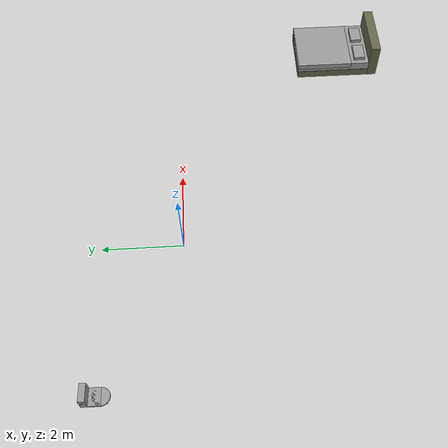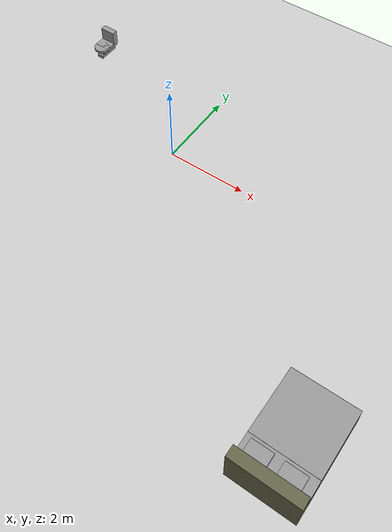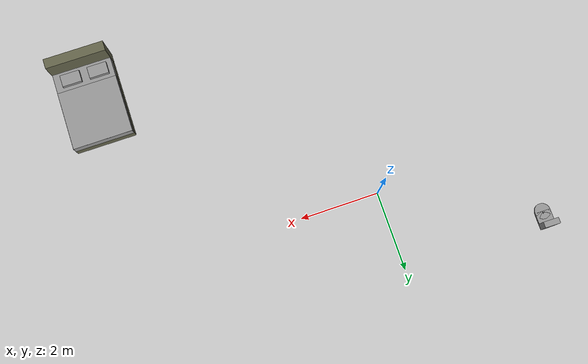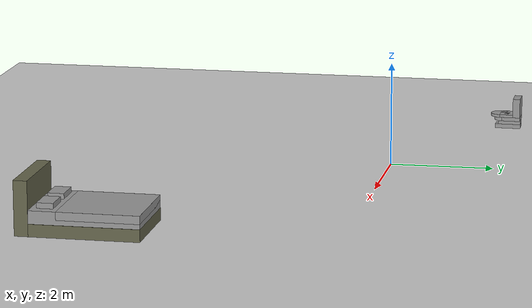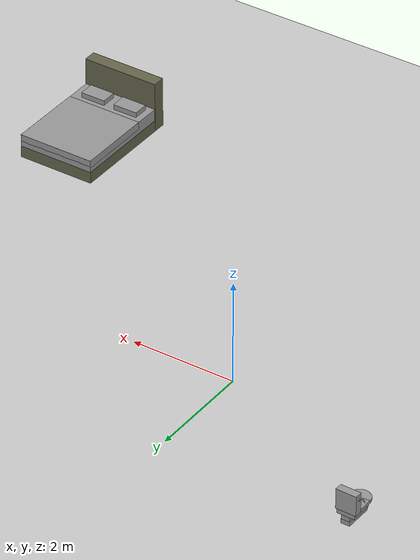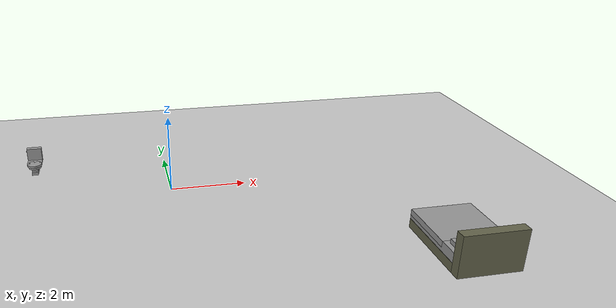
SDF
<sdf version="1.6">
 <world name="default">
  <model name="ground_plane">
   <static>1</static>
   <link name="link">
    <collision name="collision">
     <geometry><plane><normal>0 0 1</normal><size>100 100</size></plane></geometry>
     <surface><friction><ode><mu>100</mu><mu2>50</mu2></ode></friction></surface>
    </collision>
    <visual name="visual">
     <cast_shadows>0</cast_shadows>
     <geometry><plane><normal>0 0 1</normal><size>100 100</size></plane></geometry>
     <material>
      <script><uri>file://media/materials/scripts/gazebo.material</uri><name>Gazebo/Grey</name></script>
     </material>
    </visual>
   </link>
  </model>
  <model name="toilet_0">
   <link name="link_3">
    <pose>2.86172 0.097134 0.225194 0 -0 0</pose>
    <visual name="visual">
     <geometry><box><size>0.17 0.515 0.085</size></box></geometry>
     <material>
      <lighting>1</lighting>
      <script><uri>file://media/materials/scripts/gazebo.material</uri><name>Gazebo/Grey</name></script>
      <ambient>0.3 0.3 0.3 1</ambient>
      <diffuse>0.7 0.7 0.7 1</diffuse>
      <specular>0.01 1 1 1</specular>
      <emissive>0 0 0 1</emissive>
      <shader type="vertex"><normal_map>__default__</normal_map></shader>
     </material>
    </visual>
    <collision name="collision">
     <geometry><box><size>0.17 0.515 0.085</size></box></geometry>
     <surface>
      <friction>
       <ode><mu>1</mu><mu2>1</mu2><fdir1>0 0 0</fdir1><slip1>0</slip1><slip2>0</slip2></ode>
       <torsional>
        <coefficient>1</coefficient>
        <patch_radius>0</patch_radius>
        <surface_radius>0</surface_radius>
        <use_patch_radius>1</use_patch_radius>
        <ode><slip>0</slip></ode>
       </torsional>
      </friction>
      <bounce><restitution_coefficient>0</restitution_coefficient><threshold>1e+06</threshold></bounce>
      <contact>
       <collide_without_contact>0</collide_without_contact>
       <collide_without_contact_bitmask>1</collide_without_contact_bitmask>
       <collide_bitmask>1</collide_bitmask>
       <ode>
        <soft_cfm>0</soft_cfm>
        <soft_erp>0.2</soft_erp>
        <kp>1e+13</kp>
        <kd>1</kd>
        <max_vel>0.01</max_vel>
        <min_depth>0</min_depth>
       </ode>
       <bullet>
        <split_impulse>1</split_impulse>
        <split_impulse_penetration_threshold>-0.01</split_impulse_penetration_threshold>
        <soft_cfm>0</soft_cfm>
        <soft_erp>0.2</soft_erp>
        <kp>1e+13</kp>
        <kd>1</kd>
       </bullet>
      </contact>
     </surface>
    </collision>
    <inertial>
     <inertia><ixx>1</ixx><ixy>0</ixy><ixz>0</ixz><iyy>1</iyy><iyz>0</iyz><izz>1</izz></inertia>
     <mass>1</mass>
    </inertial>
   </link>
   <link name="link_3_clone">
    <pose>2.86172 0.064634 0.310194 0 -0 0</pose>
    <visual name="visual">
     <geometry><box><size>0.17 0.45 0.085</size></box></geometry>
     <material>
      <lighting>1</lighting>
      <script><uri>file://media/materials/scripts/gazebo.material</uri><name>Gazebo/Grey</name></script>
      <ambient>0.3 0.3 0.3 1</ambient>
      <diffuse>0.7 0.7 0.7 1</diffuse>
      <specular>0.01 1 1 1</specular>
      <emissive>0 0 0 1</emissive>
      <shader type="vertex"><normal_map>__default__</normal_map></shader>
     </material>
    </visual>
    <collision name="collision">
     <geometry><box><size>0.17 0.45 0.085</size></box></geometry>
     <surface>
      <friction>
       <ode><mu>1</mu><mu2>1</mu2><fdir1>0 0 0</fdir1><slip1>0</slip1><slip2>0</slip2></ode>
       <torsional>
        <coefficient>1</coefficient>
        <patch_radius>0</patch_radius>
        <surface_radius>0</surface_radius>
        <use_patch_radius>1</use_patch_radius>
        <ode><slip>0</slip></ode>
       </torsional>
      </friction>
      <bounce><restitution_coefficient>0</restitution_coefficient><threshold>1e+06</threshold></bounce>
      <contact>
       <collide_without_contact>0</collide_without_contact>
       <collide_without_contact_bitmask>1</collide_without_contact_bitmask>
       <collide_bitmask>1</collide_bitmask>
       <ode>
        <soft_cfm>0</soft_cfm>
        <soft_erp>0.2</soft_erp>
        <kp>1e+13</kp>
        <kd>1</kd>
        <max_vel>0.01</max_vel>
        <min_depth>0</min_depth>
       </ode>
       <bullet>
        <split_impulse>1</split_impulse>
        <split_impulse_penetration_threshold>-0.01</split_impulse_penetration_threshold>
        <soft_cfm>0</soft_cfm>
        <soft_erp>0.2</soft_erp>
        <kp>1e+13</kp>
        <kd>1</kd>
       </bullet>
      </contact>
     </surface>
    </collision>
    <inertial>
     <inertia><ixx>1</ixx><ixy>0</ixy><ixz>0</ixz><iyy>1</iyy><iyz>0</iyz><izz>1</izz></inertia>
     <mass>1</mass>
    </inertial>
   </link>
   <link name="link_3_clone_0">
    <pose>2.86172 -0.087866 0.627694 0 -0 0</pose>
    <visual name="visual">
     <geometry><box><size>0.39 0.145 0.39</size></box></geometry>
     <material>
      <lighting>1</lighting>
      <script><uri>file://media/materials/scripts/gazebo.material</uri><name>Gazebo/Grey</name></script>
      <ambient>0.3 0.3 0.3 1</ambient>
      <diffuse>0.7 0.7 0.7 1</diffuse>
      <specular>0.01 1 1 1</specular>
      <emissive>0 0 0 1</emissive>
      <shader type="vertex"><normal_map>__default__</normal_map></shader>
     </material>
    </visual>
    <collision name="collision">
     <geometry><box><size>0.39 0.145 0.39</size></box></geometry>
     <surface>
      <friction>
       <ode><mu>1</mu><mu2>1</mu2><fdir1>0 0 0</fdir1><slip1>0</slip1><slip2>0</slip2></ode>
       <torsional>
        <coefficient>1</coefficient>
        <patch_radius>0</patch_radius>
        <surface_radius>0</surface_radius>
        <use_patch_radius>1</use_patch_radius>
        <ode><slip>0</slip></ode>
       </torsional>
      </friction>
      <bounce><restitution_coefficient>0</restitution_coefficient><threshold>1e+06</threshold></bounce>
      <contact>
       <collide_without_contact>0</collide_without_contact>
       <collide_without_contact_bitmask>1</collide_without_contact_bitmask>
       <collide_bitmask>1</collide_bitmask>
       <ode>
        <soft_cfm>0</soft_cfm>
        <soft_erp>0.2</soft_erp>
        <kp>1e+13</kp>
        <kd>1</kd>
        <max_vel>0.01</max_vel>
        <min_depth>0</min_depth>
       </ode>
       <bullet>
        <split_impulse>1</split_impulse>
        <split_impulse_penetration_threshold>-0.01</split_impulse_penetration_threshold>
        <soft_cfm>0</soft_cfm>
        <soft_erp>0.2</soft_erp>
        <kp>1e+13</kp>
        <kd>1</kd>
       </bullet>
      </contact>
     </surface>
    </collision>
    <inertial>
     <inertia><ixx>1</ixx><ixy>0</ixy><ixz>0</ixz><iyy>1</iyy><iyz>0</iyz><izz>1</izz></inertia>
     <mass>1</mass>
    </inertial>
   </link>
   <link name="link_4">
    <pose>2.86172 0.024634 0.392694 0 -0 0</pose>
    <visual name="visual">
     <geometry><box><size>0.34 0.37 0.08</size></box></geometry>
     <material>
      <lighting>1</lighting>
      <script><uri>file://media/materials/scripts/gazebo.material</uri><name>Gazebo/Grey</name></script>
      <ambient>0.3 0.3 0.3 1</ambient>
      <diffuse>0.7 0.7 0.7 1</diffuse>
      <specular>0.01 1 1 1</specular>
      <emissive>0 0 0 1</emissive>
      <shader type="vertex"><normal_map>__default__</normal_map></shader>
     </material>
    </visual>
    <collision name="collision">
     <geometry><box><size>0.34 0.37 0.08</size></box></geometry>
     <surface>
      <friction>
       <ode><mu>1</mu><mu2>1</mu2><fdir1>0 0 0</fdir1><slip1>0</slip1><slip2>0</slip2></ode>
       <torsional>
        <coefficient>1</coefficient>
        <patch_radius>0</patch_radius>
        <surface_radius>0</surface_radius>
        <use_patch_radius>1</use_patch_radius>
        <ode><slip>0</slip></ode>
       </torsional>
      </friction>
      <bounce><restitution_coefficient>0</restitution_coefficient><threshold>1e+06</threshold></bounce>
      <contact>
       <collide_without_contact>0</collide_without_contact>
       <collide_without_contact_bitmask>1</collide_without_contact_bitmask>
       <collide_bitmask>1</collide_bitmask>
       <ode>
        <soft_cfm>0</soft_cfm>
        <soft_erp>0.2</soft_erp>
        <kp>1e+13</kp>
        <kd>1</kd>
        <max_vel>0.01</max_vel>
        <min_depth>0</min_depth>
       </ode>
       <bullet>
        <split_impulse>1</split_impulse>
        <split_impulse_penetration_threshold>-0.01</split_impulse_penetration_threshold>
        <soft_cfm>0</soft_cfm>
        <soft_erp>0.2</soft_erp>
        <kp>1e+13</kp>
        <kd>1</kd>
       </bullet>
      </contact>
     </surface>
    </collision>
    <inertial>
     <inertia><ixx>1</ixx><ixy>0</ixy><ixz>0</ixz><iyy>1</iyy><iyz>0</iyz><izz>1</izz></inertia>
     <mass>1</mass>
    </inertial>
   </link>
   <link name="link_6">
    <pose>2.86172 0.209635 0.392694 0 -0 0</pose>
    <visual name="visual">
     <geometry><cylinder><radius>0.17</radius><length>0.08</length></cylinder></geometry>
     <material>
      <lighting>1</lighting>
      <script><uri>file://media/materials/scripts/gazebo.material</uri><name>Gazebo/Grey</name></script>
      <ambient>0.3 0.3 0.3 1</ambient>
      <diffuse>0.7 0.7 0.7 1</diffuse>
      <specular>0.01 1 1 1</specular>
      <emissive>0 0 0 1</emissive>
      <shader type="vertex"><normal_map>__default__</normal_map></shader>
     </material>
    </visual>
    <collision name="collision">
     <geometry><cylinder><radius>0.17</radius><length>0.08</length></cylinder></geometry>
     <surface>
      <friction>
       <ode><mu>1</mu><mu2>1</mu2><fdir1>0 0 0</fdir1><slip1>0</slip1><slip2>0</slip2></ode>
       <torsional>
        <coefficient>1</coefficient>
        <patch_radius>0</patch_radius>
        <surface_radius>0</surface_radius>
        <use_patch_radius>1</use_patch_radius>
        <ode><slip>0</slip></ode>
       </torsional>
      </friction>
      <bounce><restitution_coefficient>0</restitution_coefficient><threshold>1e+06</threshold></bounce>
      <contact>
       <collide_without_contact>0</collide_without_contact>
       <collide_without_contact_bitmask>1</collide_without_contact_bitmask>
       <collide_bitmask>1</collide_bitmask>
       <ode>
        <soft_cfm>0</soft_cfm>
        <soft_erp>0.2</soft_erp>
        <kp>1e+13</kp>
        <kd>1</kd>
        <max_vel>0.01</max_vel>
        <min_depth>0</min_depth>
       </ode>
       <bullet>
        <split_impulse>1</split_impulse>
        <split_impulse_penetration_threshold>-0.01</split_impulse_penetration_threshold>
        <soft_cfm>0</soft_cfm>
        <soft_erp>0.2</soft_erp>
        <kp>1e+13</kp>
        <kd>1</kd>
       </bullet>
      </contact>
     </surface>
    </collision>
    <inertial>
     <inertia><ixx>1</ixx><ixy>0</ixy><ixz>0</ixz><iyy>1</iyy><iyz>0</iyz><izz>1</izz></inertia>
     <mass>1</mass>
    </inertial>
   </link>
   <link name="link_7">
    <pose>2.86172 0.119634 0.460194 0 -0 0</pose>
    <visual name="visual">
     <geometry><box><size>0.39 0.27 0.055</size></box></geometry>
     <material>
      <lighting>1</lighting>
      <script><uri>file://media/materials/scripts/gazebo.material</uri><name>Gazebo/Grey</name></script>
      <ambient>0.3 0.3 0.3 1</ambient>
      <diffuse>0.7 0.7 0.7 1</diffuse>
      <specular>0.01 1 1 1</specular>
      <emissive>0 0 0 1</emissive>
      <shader type="vertex"><normal_map>__default__</normal_map></shader>
     </material>
    </visual>
    <collision name="collision">
     <geometry><box><size>0.39 0.27 0.055</size></box></geometry>
     <surface>
      <friction>
       <ode><mu>1</mu><mu2>1</mu2><fdir1>0 0 0</fdir1><slip1>0</slip1><slip2>0</slip2></ode>
       <torsional>
        <coefficient>1</coefficient>
        <patch_radius>0</patch_radius>
        <surface_radius>0</surface_radius>
        <use_patch_radius>1</use_patch_radius>
        <ode><slip>0</slip></ode>
       </torsional>
      </friction>
      <bounce><restitution_coefficient>0</restitution_coefficient><threshold>1e+06</threshold></bounce>
      <contact>
       <collide_without_contact>0</collide_without_contact>
       <collide_without_contact_bitmask>1</collide_without_contact_bitmask>
       <collide_bitmask>1</collide_bitmask>
       <ode>
        <soft_cfm>0</soft_cfm>
        <soft_erp>0.2</soft_erp>
        <kp>1e+13</kp>
        <kd>1</kd>
        <max_vel>0.01</max_vel>
        <min_depth>0</min_depth>
       </ode>
       <bullet>
        <split_impulse>1</split_impulse>
        <split_impulse_penetration_threshold>-0.01</split_impulse_penetration_threshold>
        <soft_cfm>0</soft_cfm>
        <soft_erp>0.2</soft_erp>
        <kp>1e+13</kp>
        <kd>1</kd>
       </bullet>
      </contact>
     </surface>
    </collision>
    <inertial>
     <inertia><ixx>1</ixx><ixy>0</ixy><ixz>0</ixz><iyy>1</iyy><iyz>0</iyz><izz>1</izz></inertia>
     <mass>1</mass>
    </inertial>
   </link>
   <link name="link_8">
    <pose>2.86172 0.254634 0.460194 0 -0 0</pose>
    <visual name="visual">
     <geometry><cylinder><radius>0.195</radius><length>0.055</length></cylinder></geometry>
     <material>
      <lighting>1</lighting>
      <script><uri>file://media/materials/scripts/gazebo.material</uri><name>Gazebo/Grey</name></script>
      <ambient>0.3 0.3 0.3 1</ambient>
      <diffuse>0.7 0.7 0.7 1</diffuse>
      <specular>0.01 1 1 1</specular>
      <emissive>0 0 0 1</emissive>
      <shader type="vertex"><normal_map>__default__</normal_map></shader>
     </material>
    </visual>
    <collision name="collision">
     <geometry><cylinder><radius>0.195</radius><length>0.055</length></cylinder></geometry>
     <surface>
      <friction>
       <ode><mu>1</mu><mu2>1</mu2><fdir1>0 0 0</fdir1><slip1>0</slip1><slip2>0</slip2></ode>
       <torsional>
        <coefficient>1</coefficient>
        <patch_radius>0</patch_radius>
        <surface_radius>0</surface_radius>
        <use_patch_radius>1</use_patch_radius>
        <ode><slip>0</slip></ode>
       </torsional>
      </friction>
      <bounce><restitution_coefficient>0</restitution_coefficient><threshold>1e+06</threshold></bounce>
      <contact>
       <collide_without_contact>0</collide_without_contact>
       <collide_without_contact_bitmask>1</collide_without_contact_bitmask>
       <collide_bitmask>1</collide_bitmask>
       <ode>
        <soft_cfm>0</soft_cfm>
        <soft_erp>0.2</soft_erp>
        <kp>1e+13</kp>
        <kd>1</kd>
        <max_vel>0.01</max_vel>
        <min_depth>0</min_depth>
       </ode>
       <bullet>
        <split_impulse>1</split_impulse>
        <split_impulse_penetration_threshold>-0.01</split_impulse_penetration_threshold>
        <soft_cfm>0</soft_cfm>
        <soft_erp>0.2</soft_erp>
        <kp>1e+13</kp>
        <kd>1</kd>
       </bullet>
      </contact>
     </surface>
    </collision>
    <inertial>
     <inertia><ixx>1</ixx><ixy>0</ixy><ixz>0</ixz><iyy>1</iyy><iyz>0</iyz><izz>1</izz></inertia>
     <mass>1</mass>
    </inertial>
   </link>
   <link name="link_9">
    <pose>3.06673 -0.087866 0.72514 0 1.5707 0</pose>
    <visual name="visual">
     <geometry><cylinder><radius>0.02</radius><length>0.02</length></cylinder></geometry>
     <material>
      <lighting>1</lighting>
      <script><uri>file://media/materials/scripts/gazebo.material</uri><name>Gazebo/Grey</name></script>
      <ambient>0.3 0.3 0.3 1</ambient>
      <diffuse>0.7 0.7 0.7 1</diffuse>
      <specular>0.01 0.01 0.01 1</specular>
      <emissive>0 0 0 1</emissive>
      <shader type="vertex"><normal_map>__default__</normal_map></shader>
     </material>
    </visual>
    <collision name="collision">
     <geometry><cylinder><radius>0.02</radius><length>0.02</length></cylinder></geometry>
     <surface>
      <friction>
       <ode><mu>1</mu><mu2>1</mu2><fdir1>0 0 0</fdir1><slip1>0</slip1><slip2>0</slip2></ode>
       <torsional>
        <coefficient>1</coefficient>
        <patch_radius>0</patch_radius>
        <surface_radius>0</surface_radius>
        <use_patch_radius>1</use_patch_radius>
        <ode><slip>0</slip></ode>
       </torsional>
      </friction>
      <bounce><restitution_coefficient>0</restitution_coefficient><threshold>1e+06</threshold></bounce>
      <contact>
       <collide_without_contact>0</collide_without_contact>
       <collide_without_contact_bitmask>1</collide_without_contact_bitmask>
       <collide_bitmask>1</collide_bitmask>
       <ode>
        <soft_cfm>0</soft_cfm>
        <soft_erp>0.2</soft_erp>
        <kp>1e+13</kp>
        <kd>1</kd>
        <max_vel>0.01</max_vel>
        <min_depth>0</min_depth>
       </ode>
       <bullet>
        <split_impulse>1</split_impulse>
        <split_impulse_penetration_threshold>-0.01</split_impulse_penetration_threshold>
        <soft_cfm>0</soft_cfm>
        <soft_erp>0.2</soft_erp>
        <kp>1e+13</kp>
        <kd>1</kd>
       </bullet>
      </contact>
     </surface>
    </collision>
    <inertial>
     <inertia><ixx>1</ixx><ixy>0</ixy><ixz>0</ixz><iyy>1</iyy><iyz>0</iyz><izz>1</izz></inertia>
     <mass>1</mass>
    </inertial>
   </link>
   <joint name="link_3_clone_0_JOINT_11" type="fixed">
    <parent>link_3_clone_0</parent>
    <child>link_7</child>
    <physics>
     <ode><limit><cfm>0</cfm><erp>0.2</erp></limit><suspension><cfm>0</cfm><erp>0.2</erp></suspension></ode>
    </physics>
   </joint>
   <joint name="link_3_clone_0_JOINT_15" type="fixed">
    <parent>link_3_clone_0</parent>
    <child>link_9</child>
    <physics>
     <ode><limit><cfm>0</cfm><erp>0.2</erp></limit><suspension><cfm>0</cfm><erp>0.2</erp></suspension></ode>
    </physics>
   </joint>
   <joint name="link_3_clone_JOINT_14" type="fixed">
    <parent>link_3_clone</parent>
    <child>link_3</child>
    <physics>
     <ode><limit><cfm>0</cfm><erp>0.2</erp></limit><suspension><cfm>0</cfm><erp>0.2</erp></suspension></ode>
    </physics>
   </joint>
   <joint name="link_4_JOINT_10" type="fixed">
    <parent>link_4</parent>
    <child>link_3_clone_0</child>
    <physics>
     <ode><limit><cfm>0</cfm><erp>0.2</erp></limit><suspension><cfm>0</cfm><erp>0.2</erp></suspension></ode>
    </physics>
   </joint>
   <joint name="link_4_JOINT_13" type="fixed">
    <parent>link_4</parent>
    <child>link_3_clone</child>
    <physics>
     <ode><limit><cfm>0</cfm><erp>0.2</erp></limit><suspension><cfm>0</cfm><erp>0.2</erp></suspension></ode>
    </physics>
   </joint>
   <joint name="link_4_JOINT_9" type="fixed">
    <parent>link_4</parent>
    <child>link_6</child>
    <physics>
     <ode><limit><cfm>0</cfm><erp>0.2</erp></limit><suspension><cfm>0</cfm><erp>0.2</erp></suspension></ode>
    </physics>
   </joint>
   <joint name="link_7_JOINT_12" type="fixed">
    <parent>link_7</parent>
    <child>link_8</child>
    <physics>
     <ode><limit><cfm>0</cfm><erp>0.2</erp></limit><suspension><cfm>0</cfm><erp>0.2</erp></suspension></ode>
    </physics>
   </joint>
   <static>0</static>
   <pose>-0.754105 1.96964 -0.182725 1e-06 -1.1e-05 3.12709</pose>
  </model>
  <model name="big_bed_3_1">
   <link name="link_0">
    <pose>6.73021 -2.45649 0.5 0 -0 0</pose>
    <visual name="visual">
     <geometry><box><size>1.51 2 0.23</size></box></geometry>
     <material>
      <lighting>1</lighting>
      <script><uri>file://media/materials/scripts/gazebo.material</uri><name>Gazebo/Grey</name></script>
      <ambient>0.4 0.4 0.3 1</ambient>
      <diffuse>0.7 0.7 0.7 1</diffuse>
      <specular>0.01 0.21 0.51 1</specular>
      <emissive>0 0 0 1</emissive>
      <shader type="vertex"><normal_map>__default__</normal_map></shader>
     </material>
    </visual>
    <collision name="collision">
     <geometry><box><size>1.51 2 0.23</size></box></geometry>
     <surface>
      <friction>
       <ode><mu>1</mu><mu2>1</mu2><fdir1>0 0 0</fdir1><slip1>0</slip1><slip2>0</slip2></ode>
       <torsional>
        <coefficient>1</coefficient>
        <patch_radius>0</patch_radius>
        <surface_radius>0</surface_radius>
        <use_patch_radius>1</use_patch_radius>
        <ode><slip>0</slip></ode>
       </torsional>
      </friction>
      <bounce><restitution_coefficient>0</restitution_coefficient><threshold>1e+06</threshold></bounce>
      <contact>
       <collide_without_contact>0</collide_without_contact>
       <collide_without_contact_bitmask>1</collide_without_contact_bitmask>
       <collide_bitmask>1</collide_bitmask>
       <ode>
        <soft_cfm>0</soft_cfm>
        <soft_erp>0.2</soft_erp>
        <kp>1e+13</kp>
        <kd>1</kd>
        <max_vel>0.01</max_vel>
        <min_depth>0</min_depth>
       </ode>
       <bullet>
        <split_impulse>1</split_impulse>
        <split_impulse_penetration_threshold>-0.01</split_impulse_penetration_threshold>
        <soft_cfm>0</soft_cfm>
        <soft_erp>0.2</soft_erp>
        <kp>1e+13</kp>
        <kd>1</kd>
       </bullet>
      </contact>
     </surface>
    </collision>
    <inertial>
     <inertia><ixx>1</ixx><ixy>0</ixy><ixz>0</ixz><iyy>1</iyy><iyz>0</iyz><izz>1</izz></inertia>
     <mass>1</mass>
    </inertial>
   </link>
   <link name="link_1">
    <pose>6.73021 -3.58149 0.885 0 -0 0</pose>
    <visual name="visual">
     <geometry><box><size>1.51 0.25 1</size></box></geometry>
     <material>
      <lighting>1</lighting>
      <script><uri>file://media/materials/scripts/gazebo.material</uri><name>Gazebo/Grey</name></script>
      <ambient>0.4 0.4 0.3 1</ambient>
      <diffuse>0.7 0.7 0.7 1</diffuse>
      <specular>0.01 0.21 0.51 1</specular>
      <emissive>0 0 0 1</emissive>
      <shader type="vertex"><normal_map>__default__</normal_map></shader>
     </material>
    </visual>
    <collision name="collision">
     <geometry><box><size>1.51 0.25 1</size></box></geometry>
     <surface>
      <friction>
       <ode><mu>1</mu><mu2>1</mu2><fdir1>0 0 0</fdir1><slip1>0</slip1><slip2>0</slip2></ode>
       <torsional>
        <coefficient>1</coefficient>
        <patch_radius>0</patch_radius>
        <surface_radius>0</surface_radius>
        <use_patch_radius>1</use_patch_radius>
        <ode><slip>0</slip></ode>
       </torsional>
      </friction>
      <bounce><restitution_coefficient>0</restitution_coefficient><threshold>1e+06</threshold></bounce>
      <contact>
       <collide_without_contact>0</collide_without_contact>
       <collide_without_contact_bitmask>1</collide_without_contact_bitmask>
       <collide_bitmask>1</collide_bitmask>
       <ode>
        <soft_cfm>0</soft_cfm>
        <soft_erp>0.2</soft_erp>
        <kp>1e+13</kp>
        <kd>1</kd>
        <max_vel>0.01</max_vel>
        <min_depth>0</min_depth>
       </ode>
       <bullet>
        <split_impulse>1</split_impulse>
        <split_impulse_penetration_threshold>-0.01</split_impulse_penetration_threshold>
        <soft_cfm>0</soft_cfm>
        <soft_erp>0.2</soft_erp>
        <kp>1e+13</kp>
        <kd>1</kd>
       </bullet>
      </contact>
     </surface>
    </collision>
    <inertial>
     <inertia><ixx>1</ixx><ixy>0</ixy><ixz>0</ixz><iyy>1</iyy><iyz>0</iyz><izz>1</izz></inertia>
     <mass>1</mass>
    </inertial>
   </link>
   <link name="link_2">
    <pose>6.73021 -2.45649 0.735 0 -0 0</pose>
    <visual name="visual">
     <geometry><box><size>1.5 2 0.24</size></box></geometry>
     <material>
      <lighting>0</lighting>
      <script><uri>file://media/materials/scripts/gazebo.material</uri><name>Gazebo/Grey</name></script>
      <ambient>0.3 0.3 0.3 1</ambient>
      <diffuse>0.7 0.7 0.7 1</diffuse>
      <specular>0.01 0.01 0.01 1</specular>
      <emissive>0 0 0 1</emissive>
      <shader type="vertex"><normal_map>__default__</normal_map></shader>
     </material>
    </visual>
    <collision name="collision">
     <geometry><box><size>1.5 2 0.24</size></box></geometry>
     <surface>
      <friction>
       <ode><mu>1</mu><mu2>1</mu2><fdir1>0 0 0</fdir1><slip1>0</slip1><slip2>0</slip2></ode>
       <torsional>
        <coefficient>1</coefficient>
        <patch_radius>0</patch_radius>
        <surface_radius>0</surface_radius>
        <use_patch_radius>1</use_patch_radius>
        <ode><slip>0</slip></ode>
       </torsional>
      </friction>
      <bounce><restitution_coefficient>0</restitution_coefficient><threshold>1e+06</threshold></bounce>
      <contact>
       <collide_without_contact>0</collide_without_contact>
       <collide_without_contact_bitmask>1</collide_without_contact_bitmask>
       <collide_bitmask>1</collide_bitmask>
       <ode>
        <soft_cfm>0</soft_cfm>
        <soft_erp>0.2</soft_erp>
        <kp>1e+13</kp>
        <kd>1</kd>
        <max_vel>0.01</max_vel>
        <min_depth>0</min_depth>
       </ode>
       <bullet>
        <split_impulse>1</split_impulse>
        <split_impulse_penetration_threshold>-0.01</split_impulse_penetration_threshold>
        <soft_cfm>0</soft_cfm>
        <soft_erp>0.2</soft_erp>
        <kp>1e+13</kp>
        <kd>1</kd>
       </bullet>
      </contact>
     </surface>
    </collision>
    <inertial>
     <inertia><ixx>1</ixx><ixy>0</ixy><ixz>0</ixz><iyy>1</iyy><iyz>0</iyz><izz>1</izz></inertia>
     <mass>1</mass>
    </inertial>
   </link>
   <link name="link_3">
    <pose>7.04573 -3.2 0.905 0 -0 0</pose>
    <visual name="visual">
     <geometry><box><size>0.49 0.3 0.1</size></box></geometry>
     <material>
      <lighting>1</lighting>
      <script><uri>file://media/materials/scripts/gazebo.material</uri><name>Gazebo/Grey</name></script>
      <ambient>0.3 0.3 0.3 1</ambient>
      <diffuse>0.7 0.7 0.7 1</diffuse>
      <specular>0.01 0.01 0.21 1</specular>
      <emissive>0 0 0 1</emissive>
      <shader type="vertex"><normal_map>__default__</normal_map></shader>
     </material>
    </visual>
    <collision name="collision">
     <geometry><box><size>0.49 0.3 0.1</size></box></geometry>
     <surface>
      <friction>
       <ode><mu>1</mu><mu2>1</mu2><fdir1>0 0 0</fdir1><slip1>0</slip1><slip2>0</slip2></ode>
       <torsional>
        <coefficient>1</coefficient>
        <patch_radius>0</patch_radius>
        <surface_radius>0</surface_radius>
        <use_patch_radius>1</use_patch_radius>
        <ode><slip>0</slip></ode>
       </torsional>
      </friction>
      <bounce><restitution_coefficient>0</restitution_coefficient><threshold>1e+06</threshold></bounce>
      <contact>
       <collide_without_contact>0</collide_without_contact>
       <collide_without_contact_bitmask>1</collide_without_contact_bitmask>
       <collide_bitmask>1</collide_bitmask>
       <ode>
        <soft_cfm>0</soft_cfm>
        <soft_erp>0.2</soft_erp>
        <kp>1e+13</kp>
        <kd>1</kd>
        <max_vel>0.01</max_vel>
        <min_depth>0</min_depth>
       </ode>
       <bullet>
        <split_impulse>1</split_impulse>
        <split_impulse_penetration_threshold>-0.01</split_impulse_penetration_threshold>
        <soft_cfm>0</soft_cfm>
        <soft_erp>0.2</soft_erp>
        <kp>1e+13</kp>
        <kd>1</kd>
       </bullet>
      </contact>
     </surface>
    </collision>
    <inertial>
     <inertia><ixx>1</ixx><ixy>0</ixy><ixz>0</ixz><iyy>1</iyy><iyz>0</iyz><izz>1</izz></inertia>
     <mass>1</mass>
    </inertial>
   </link>
   <link name="link_3_clone">
    <pose>6.35 -3.2 0.905 0 -0 0</pose>
    <visual name="visual">
     <geometry><box><size>0.49 0.3 0.1</size></box></geometry>
     <material>
      <lighting>1</lighting>
      <script><uri>file://media/materials/scripts/gazebo.material</uri><name>Gazebo/Grey</name></script>
      <ambient>0.3 0.3 0.3 1</ambient>
      <diffuse>0.7 0.7 0.7 1</diffuse>
      <specular>0.01 0.01 0.21 1</specular>
      <emissive>0 0 0 1</emissive>
      <shader type="vertex"><normal_map>__default__</normal_map></shader>
     </material>
    </visual>
    <collision name="collision">
     <geometry><box><size>0.49 0.3 0.1</size></box></geometry>
     <surface>
      <friction>
       <ode><mu>1</mu><mu2>1</mu2><fdir1>0 0 0</fdir1><slip1>0</slip1><slip2>0</slip2></ode>
       <torsional>
        <coefficient>1</coefficient>
        <patch_radius>0</patch_radius>
        <surface_radius>0</surface_radius>
        <use_patch_radius>1</use_patch_radius>
        <ode><slip>0</slip></ode>
       </torsional>
      </friction>
      <bounce><restitution_coefficient>0</restitution_coefficient><threshold>1e+06</threshold></bounce>
      <contact>
       <collide_without_contact>0</collide_without_contact>
       <collide_without_contact_bitmask>1</collide_without_contact_bitmask>
       <collide_bitmask>1</collide_bitmask>
       <ode>
        <soft_cfm>0</soft_cfm>
        <soft_erp>0.2</soft_erp>
        <kp>1e+13</kp>
        <kd>1</kd>
        <max_vel>0.01</max_vel>
        <min_depth>0</min_depth>
       </ode>
       <bullet>
        <split_impulse>1</split_impulse>
        <split_impulse_penetration_threshold>-0.01</split_impulse_penetration_threshold>
        <soft_cfm>0</soft_cfm>
        <soft_erp>0.2</soft_erp>
        <kp>1e+13</kp>
        <kd>1</kd>
       </bullet>
      </contact>
     </surface>
    </collision>
    <inertial>
     <inertia><ixx>1</ixx><ixy>0</ixy><ixz>0</ixz><iyy>1</iyy><iyz>0</iyz><izz>1</izz></inertia>
     <mass>1</mass>
    </inertial>
   </link>
   <link name="link_4">
    <pose>6.73021 -2.20649 0.8555 0 -0 0</pose>
    <visual name="visual">
     <geometry><box><size>1.502 1.5 0.001</size></box></geometry>
     <material>
      <lighting>1</lighting>
      <script><uri>file://media/materials/scripts/gazebo.material</uri><name>Gazebo/Grey</name></script>
      <ambient>0.3 0.3 0.3 1</ambient>
      <diffuse>0.7 0.7 0.7 1</diffuse>
      <specular>0.01 0.01 0.01 1</specular>
      <emissive>0 0 0 1</emissive>
      <shader type="vertex"><normal_map>__default__</normal_map></shader>
     </material>
    </visual>
    <collision name="collision">
     <geometry><box><size>1.502 1.5 0.001</size></box></geometry>
     <surface>
      <friction>
       <ode><mu>1</mu><mu2>1</mu2><fdir1>0 0 0</fdir1><slip1>0</slip1><slip2>0</slip2></ode>
       <torsional>
        <coefficient>1</coefficient>
        <patch_radius>0</patch_radius>
        <surface_radius>0</surface_radius>
        <use_patch_radius>1</use_patch_radius>
        <ode><slip>0</slip></ode>
       </torsional>
      </friction>
      <bounce><restitution_coefficient>0</restitution_coefficient><threshold>1e+06</threshold></bounce>
      <contact>
       <collide_without_contact>0</collide_without_contact>
       <collide_without_contact_bitmask>1</collide_without_contact_bitmask>
       <collide_bitmask>1</collide_bitmask>
       <ode>
        <soft_cfm>0</soft_cfm>
        <soft_erp>0.2</soft_erp>
        <kp>1e+13</kp>
        <kd>1</kd>
        <max_vel>0.01</max_vel>
        <min_depth>0</min_depth>
       </ode>
       <bullet>
        <split_impulse>1</split_impulse>
        <split_impulse_penetration_threshold>-0.01</split_impulse_penetration_threshold>
        <soft_cfm>0</soft_cfm>
        <soft_erp>0.2</soft_erp>
        <kp>1e+13</kp>
        <kd>1</kd>
       </bullet>
      </contact>
     </surface>
    </collision>
    <inertial>
     <inertia><ixx>1</ixx><ixy>0</ixy><ixz>0</ixz><iyy>1</iyy><iyz>0</iyz><izz>1</izz></inertia>
     <mass>1</mass>
    </inertial>
   </link>
   <link name="link_4_clone">
    <pose>5.97871 -2.20649 0.781 0 -0 0</pose>
    <visual name="visual">
     <geometry><box><size>0.001 1.5 0.15</size></box></geometry>
     <material>
      <lighting>1</lighting>
      <script><uri>file://media/materials/scripts/gazebo.material</uri><name>Gazebo/Grey</name></script>
      <ambient>0.3 0.3 0.3 1</ambient>
      <diffuse>0.7 0.7 0.7 1</diffuse>
      <specular>0.01 0.01 0.01 1</specular>
      <emissive>0 0 0 1</emissive>
      <shader type="vertex"><normal_map>__default__</normal_map></shader>
     </material>
    </visual>
    <collision name="collision">
     <geometry><box><size>0.001 1.5 0.15</size></box></geometry>
     <surface>
      <friction>
       <ode><mu>1</mu><mu2>1</mu2><fdir1>0 0 0</fdir1><slip1>0</slip1><slip2>0</slip2></ode>
       <torsional>
        <coefficient>1</coefficient>
        <patch_radius>0</patch_radius>
        <surface_radius>0</surface_radius>
        <use_patch_radius>1</use_patch_radius>
        <ode><slip>0</slip></ode>
       </torsional>
      </friction>
      <bounce><restitution_coefficient>0</restitution_coefficient><threshold>1e+06</threshold></bounce>
      <contact>
       <collide_without_contact>0</collide_without_contact>
       <collide_without_contact_bitmask>1</collide_without_contact_bitmask>
       <collide_bitmask>1</collide_bitmask>
       <ode>
        <soft_cfm>0</soft_cfm>
        <soft_erp>0.2</soft_erp>
        <kp>1e+13</kp>
        <kd>1</kd>
        <max_vel>0.01</max_vel>
        <min_depth>0</min_depth>
       </ode>
       <bullet>
        <split_impulse>1</split_impulse>
        <split_impulse_penetration_threshold>-0.01</split_impulse_penetration_threshold>
        <soft_cfm>0</soft_cfm>
        <soft_erp>0.2</soft_erp>
        <kp>1e+13</kp>
        <kd>1</kd>
       </bullet>
      </contact>
     </surface>
    </collision>
    <inertial>
     <inertia><ixx>1</ixx><ixy>0</ixy><ixz>0</ixz><iyy>1</iyy><iyz>0</iyz><izz>1</izz></inertia>
     <mass>1</mass>
    </inertial>
   </link>
   <link name="link_4_clone_clone">
    <pose>7.48171 -2.20649 0.781 0 -0 0</pose>
    <visual name="visual">
     <geometry><box><size>0.001 1.5 0.15</size></box></geometry>
     <material>
      <lighting>1</lighting>
      <script><uri>file://media/materials/scripts/gazebo.material</uri><name>Gazebo/Grey</name></script>
      <ambient>0.3 0.3 0.3 1</ambient>
      <diffuse>0.7 0.7 0.7 1</diffuse>
      <specular>0.01 0.01 0.01 1</specular>
      <emissive>0 0 0 1</emissive>
      <shader type="vertex"><normal_map>__default__</normal_map></shader>
     </material>
    </visual>
    <collision name="collision">
     <geometry><box><size>0.001 1.5 0.15</size></box></geometry>
     <surface>
      <friction>
       <ode><mu>1</mu><mu2>1</mu2><fdir1>0 0 0</fdir1><slip1>0</slip1><slip2>0</slip2></ode>
       <torsional>
        <coefficient>1</coefficient>
        <patch_radius>0</patch_radius>
        <surface_radius>0</surface_radius>
        <use_patch_radius>1</use_patch_radius>
        <ode><slip>0</slip></ode>
       </torsional>
      </friction>
      <bounce><restitution_coefficient>0</restitution_coefficient><threshold>1e+06</threshold></bounce>
      <contact>
       <collide_without_contact>0</collide_without_contact>
       <collide_without_contact_bitmask>1</collide_without_contact_bitmask>
       <collide_bitmask>1</collide_bitmask>
       <ode>
        <soft_cfm>0</soft_cfm>
        <soft_erp>0.2</soft_erp>
        <kp>1e+13</kp>
        <kd>1</kd>
        <max_vel>0.01</max_vel>
        <min_depth>0</min_depth>
       </ode>
       <bullet>
        <split_impulse>1</split_impulse>
        <split_impulse_penetration_threshold>-0.01</split_impulse_penetration_threshold>
        <soft_cfm>0</soft_cfm>
        <soft_erp>0.2</soft_erp>
        <kp>1e+13</kp>
        <kd>1</kd>
       </bullet>
      </contact>
     </surface>
    </collision>
    <inertial>
     <inertia><ixx>1</ixx><ixy>0</ixy><ixz>0</ixz><iyy>1</iyy><iyz>0</iyz><izz>1</izz></inertia>
     <mass>1</mass>
    </inertial>
   </link>
   <link name="link_4_clone_clone_0">
    <pose>6.73021 -1.45699 0.781 0 -0 0</pose>
    <visual name="visual">
     <geometry><box><size>1.502 0.001 0.15</size></box></geometry>
     <material>
      <lighting>1</lighting>
      <script><uri>file://media/materials/scripts/gazebo.material</uri><name>Gazebo/Grey</name></script>
      <ambient>0.3 0.3 0.3 1</ambient>
      <diffuse>0.7 0.7 0.7 1</diffuse>
      <specular>0.01 0.01 0.01 1</specular>
      <emissive>0 0 0 1</emissive>
      <shader type="vertex"><normal_map>__default__</normal_map></shader>
     </material>
    </visual>
    <collision name="collision">
     <geometry><box><size>1.502 0.001 0.15</size></box></geometry>
     <surface>
      <friction>
       <ode><mu>1</mu><mu2>1</mu2><fdir1>0 0 0</fdir1><slip1>0</slip1><slip2>0</slip2></ode>
       <torsional>
        <coefficient>1</coefficient>
        <patch_radius>0</patch_radius>
        <surface_radius>0</surface_radius>
        <use_patch_radius>1</use_patch_radius>
        <ode><slip>0</slip></ode>
       </torsional>
      </friction>
      <bounce><restitution_coefficient>0</restitution_coefficient><threshold>1e+06</threshold></bounce>
      <contact>
       <collide_without_contact>0</collide_without_contact>
       <collide_without_contact_bitmask>1</collide_without_contact_bitmask>
       <collide_bitmask>1</collide_bitmask>
       <ode>
        <soft_cfm>0</soft_cfm>
        <soft_erp>0.2</soft_erp>
        <kp>1e+13</kp>
        <kd>1</kd>
        <max_vel>0.01</max_vel>
        <min_depth>0</min_depth>
       </ode>
       <bullet>
        <split_impulse>1</split_impulse>
        <split_impulse_penetration_threshold>-0.01</split_impulse_penetration_threshold>
        <soft_cfm>0</soft_cfm>
        <soft_erp>0.2</soft_erp>
        <kp>1e+13</kp>
        <kd>1</kd>
       </bullet>
      </contact>
     </surface>
    </collision>
    <inertial>
     <inertia><ixx>1</ixx><ixy>0</ixy><ixz>0</ixz><iyy>1</iyy><iyz>0</iyz><izz>1</izz></inertia>
     <mass>1</mass>
    </inertial>
   </link>
   <joint name="link_0_JOINT_1" type="fixed">
    <parent>link_0</parent>
    <child>link_1</child>
    <physics>
     <ode><limit><cfm>0</cfm><erp>0.2</erp></limit><suspension><cfm>0</cfm><erp>0.2</erp></suspension></ode>
    </physics>
   </joint>
   <joint name="link_0_JOINT_2" type="fixed">
    <parent>link_0</parent>
    <child>link_2</child>
    <physics>
     <ode><limit><cfm>0</cfm><erp>0.2</erp></limit><suspension><cfm>0</cfm><erp>0.2</erp></suspension></ode>
    </physics>
   </joint>
   <joint name="link_2_JOINT_3" type="fixed">
    <parent>link_2</parent>
    <child>link_3</child>
    <physics>
     <ode><limit><cfm>0</cfm><erp>0.2</erp></limit><suspension><cfm>0</cfm><erp>0.2</erp></suspension></ode>
    </physics>
   </joint>
   <joint name="link_2_JOINT_4" type="fixed">
    <parent>link_2</parent>
    <child>link_3_clone</child>
    <physics>
     <ode><limit><cfm>0</cfm><erp>0.2</erp></limit><suspension><cfm>0</cfm><erp>0.2</erp></suspension></ode>
    </physics>
   </joint>
   <joint name="link_2_JOINT_6" type="fixed">
    <parent>link_2</parent>
    <child>link_4</child>
    <physics>
     <ode><limit><cfm>0</cfm><erp>0.2</erp></limit><suspension><cfm>0</cfm><erp>0.2</erp></suspension></ode>
    </physics>
   </joint>
   <joint name="link_4_JOINT_7" type="fixed">
    <parent>link_4</parent>
    <child>link_4_clone</child>
    <physics>
     <ode><limit><cfm>0</cfm><erp>0.2</erp></limit><suspension><cfm>0</cfm><erp>0.2</erp></suspension></ode>
    </physics>
   </joint>
   <joint name="link_4_JOINT_8" type="fixed">
    <parent>link_4</parent>
    <child>link_4_clone_clone</child>
    <physics>
     <ode><limit><cfm>0</cfm><erp>0.2</erp></limit><suspension><cfm>0</cfm><erp>0.2</erp></suspension></ode>
    </physics>
   </joint>
   <joint name="link_4_JOINT_9" type="fixed">
    <parent>link_4</parent>
    <child>link_4_clone_clone_0</child>
    <physics>
     <ode><limit><cfm>0</cfm><erp>0.2</erp></limit><suspension><cfm>0</cfm><erp>0.2</erp></suspension></ode>
    </physics>
   </joint>
   <static>0</static>
   <pose>-0.723253 -1.89009 -0.290507 0 5e-06 -0.000492</pose>
  </model>
 </world>
</sdf>
